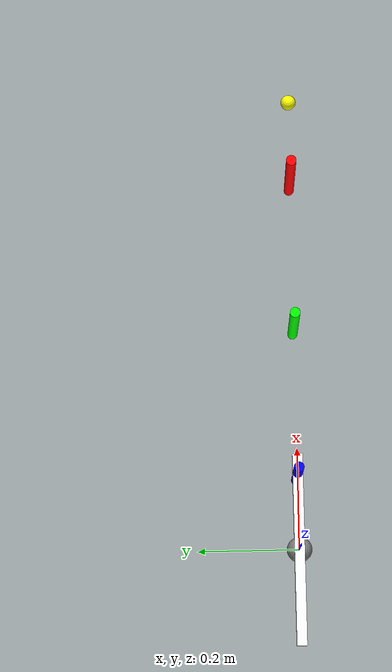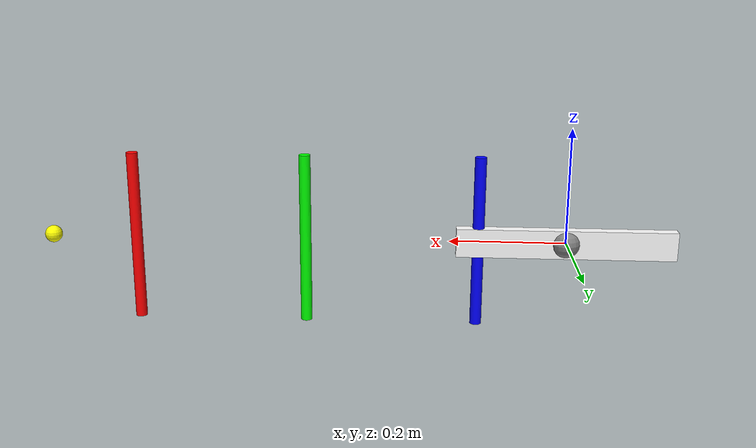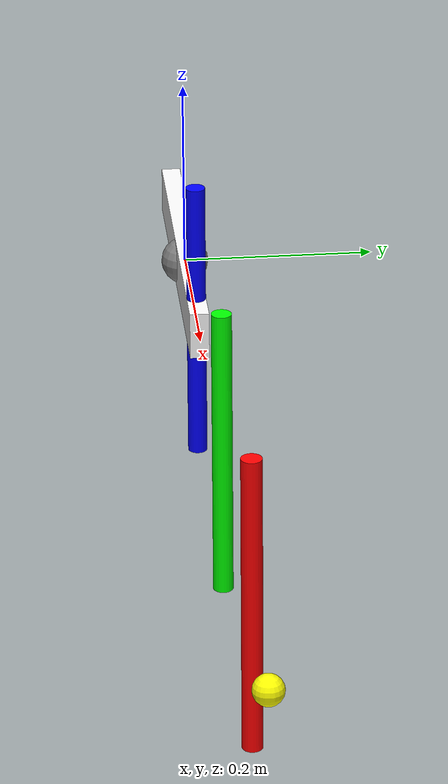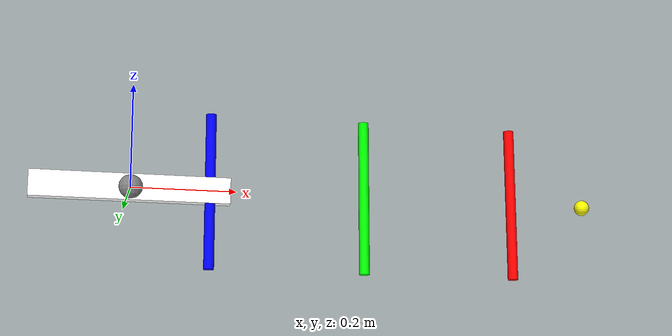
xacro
<?xml version="1.0"?>
<robot xmlns:xacro="http://ros.org/wiki/xacro" name="second_robot">

  <xacro:include filename="$(find second_robot)/description/constants.xacro"/>
  <xacro:include filename="$(find second_robot)/description/robot_core.xacro"/>
  <xacro:include filename="$(find second_robot)/description/gz_control.xacro"/>

</robot>

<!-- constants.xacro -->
<robot xmlns:xacro="http://www.ros.org/wiki/xacro">
    <material name="white">
        <color rgba="1 1 1 1" />
    </material>

    <material name="blue">
        <color rgba="0 0 1 1" />
    </material>
    <material name="green">
        <color rgba="0 1 0 1" />
    </material>
    <material name="yellow">
        <color rgba="1 1 0 1" />
    </material>
    <material name="cyan">
        <color rgba="0 1 1 1" />
    </material>
    <material name="pink">
        <color rgba="1 0.5 0.5 1" />
    </material>
    <material name="gray">
        <color rgba="0.5 0.5 0.5 1" />
    </material>

    <material name="purple">
        <color rgba="0.5 0 0.5 1" />
    </material>
    <material name="black">
        <color rgba="0 0 0 1" />
    </material>

    <material name="silver">
        <color rgba="${233/255} ${233/255} ${216/255} 1.0"/>
    </material>

    <material name="orange">
        <color rgba="${255/255} ${108/255} ${10/255} 1.0"/>
    </material>

    <material name="brown">
        <color rgba="${222/255} ${207/255} ${195/255} 1.0"/>
    </material>

    <material name="red">
        <color rgba="0.8 0.0 0.0 1.0"/>
    </material>

    <!-- Constants for robot dimensions -->
  <xacro:property name="link_length" value="0.3"/>
  <xacro:property name="link_radius" value="0.01"/>

</robot>

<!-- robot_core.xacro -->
<robot xmlns:xacro="http://www.ros.org/wiki/xacro">

  <!-- Base Link -->
  <link name="base_link">
    <visual name="base_link_visual">
      <origin rpy="0 0 0" xyz="0 0 0" />
      <geometry>
        <box size="0.3762 0.02 0.05" />
      </geometry>
      <material name="white" />
    </visual>
    <inertial>
      <origin xyz="0 0 0" />
      <mass value="2.2" />
      <inertia ixx="0.001" iyy="0.001" izz="0.001" ixy="0" ixz="0" iyz="0" />
    </inertial>
    <collision name="base_collision">
      <origin xyz="0 0 0" rpy="0 0 0" />
      <geometry>
        <box size="0.3762 0.02 0.05" />
      </geometry>
    </collision>
  </link>

  <!-- Base to Shoulder Joint -->
  <joint name="base_to_shoulder_joint" type="fixed">
    <parent link="base_link" />
    <child link="shoulder_link" />
    <origin xyz="0 0 0" rpy="0 0 0" />
  </joint>

  <!-- Shoulder Link -->
  <link name="shoulder_link">
    <visual>
      <geometry>
        <sphere radius="0.025" />
      </geometry>
      <origin xyz="0 0 0" rpy="0 0 0" />
      <material name="gray" />
    </visual>
    <inertial>
      <origin xyz="0 0 0" />
      <mass value="0.2" />
      <inertia ixx="0.00005" iyy="0.00005" izz="0.00005" ixy="0" ixz="0" iyz="0" />
    </inertial>
  </link>

  <!-- Shoulder Joint -->
  <joint name="shoulder_joint" type="revolute">
    <parent link="shoulder_link" />
    <child link="upper_arm_link" />
    <origin xyz="0 0 0" rpy="0 0 0" />
    <axis xyz="0 0 1" />
    <limit lower="-3.14" upper="3.14" effort="1.0" velocity="2.0" />
  </joint>

  <link name="upper_arm_link">
    <visual>
      <geometry>
        <cylinder length="${link_length}" radius="${link_radius}" />
      </geometry>
      <origin xyz="${link_length/2} 0 0" rpy="0 0 0" />
      <material name="blue">
        <color rgba="0 0 1 1" />
      </material>
    </visual>
    <inertial>
      <origin xyz="${link_length/2} 0 0" />
      <mass value="0.15" />
      <inertia ixx="0.00012" iyy="0.00012" izz="0.00002" ixy="0" ixz="0" iyz="0" />
    </inertial>
  </link>

  <!-- Elbow Joint -->
  <joint name="elbow_joint" type="revolute">
    <parent link="upper_arm_link" />
    <child link="forearm_link" />
    <origin xyz="${link_length} 0 0" rpy="0 0 0" />
    <axis xyz="0 0 1" />
    <limit lower="-3.14" upper="3.14" effort="1.0" velocity="2.0" />
  </joint>

  <link name="forearm_link">
    <visual>
      <geometry>
        <cylinder length="${link_length}" radius="${link_radius}" />
      </geometry>
      <origin xyz="${link_length/2} 0 0" rpy="0 0 0" />
      <material name="green">
        <color rgba="0 1 0 1" />
      </material>
    </visual>
    <inertial>
      <origin xyz="${link_length/2} 0 0" />
      <mass value="0.12" />
      <inertia ixx="0.00010" iyy="0.00010" izz="0.000015" ixy="0" ixz="0" iyz="0" />
    </inertial>
  </link>

  <!-- Wrist Joint -->
  <joint name="wrist_joint" type="revolute">
    <parent link="forearm_link" />
    <child link="wrist_link" />
    <origin xyz="${link_length} 0 0" rpy="0 0 0" />
    <axis xyz="0 0 1" />
    <limit lower="-3.14" upper="3.14" effort="1.0" velocity="2.0" />
  </joint>

  <link name="wrist_link">
    <visual>
      <geometry>
        <cylinder length="${link_length}" radius="${link_radius}" />
      </geometry>
      <origin xyz="${link_length/2} 0 0" rpy="0 0 0" />
      <material name="red">
        <color rgba="1 0 0 1" />
      </material>
    </visual>
    <inertial>
      <origin xyz="${link_length/2} 0 0" />
      <mass value="0.08" />
      <inertia ixx="0.00007" iyy="0.00007" izz="0.00001" ixy="0" ixz="0" iyz="0" />
    </inertial>
  </link>

  <!-- End Effector -->
  <link name="end_effector_link">
    <visual>
      <geometry>
        <sphere radius="0.015" />
      </geometry>
      <origin xyz="0 0 0" rpy="0 0 0" />
      <material name="yellow">
        <color rgba="1 1 0 1" />
      </material>
    </visual>
    <inertial>
      <origin xyz="0 0 0" />
      <mass value="0.02" />
      <inertia ixx="0.00001" iyy="0.00001" izz="0.00001" ixy="0" ixz="0" iyz="0" />
    </inertial>
  </link>

  <joint name="ee_fixed_joint" type="fixed">
    <parent link="wrist_link" />
    <child link="end_effector_link" />
    <origin xyz="${link_length} 0 0" rpy="0 0 0" />
  </joint>

</robot>
